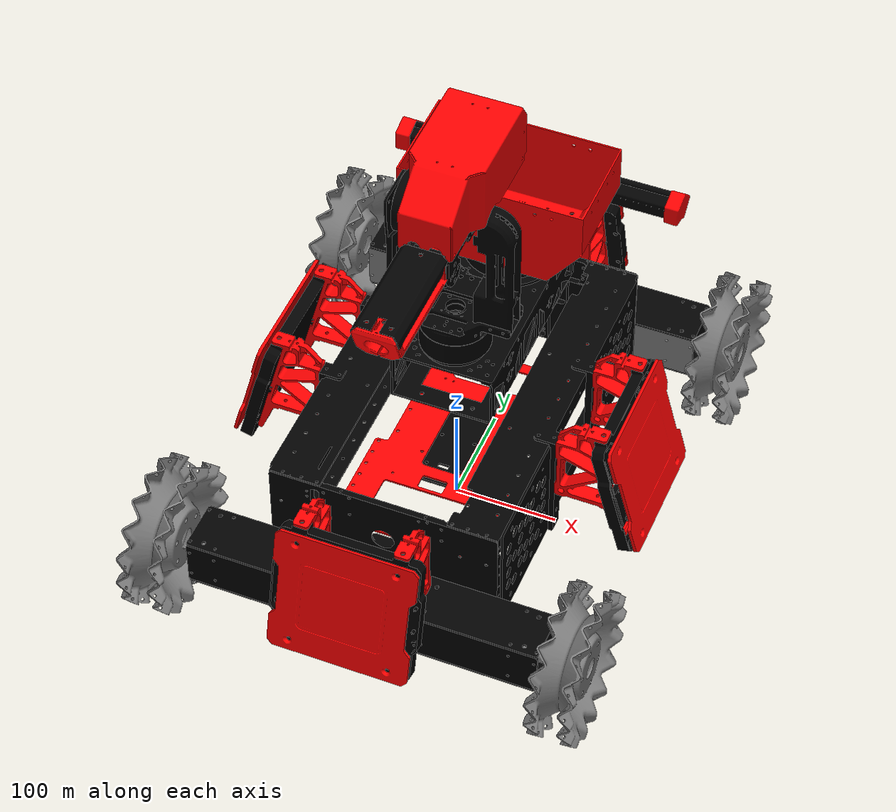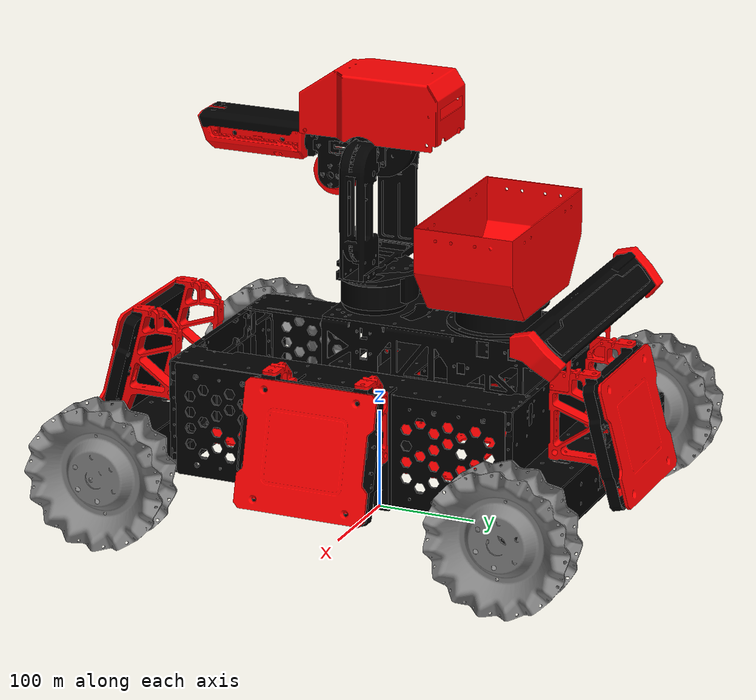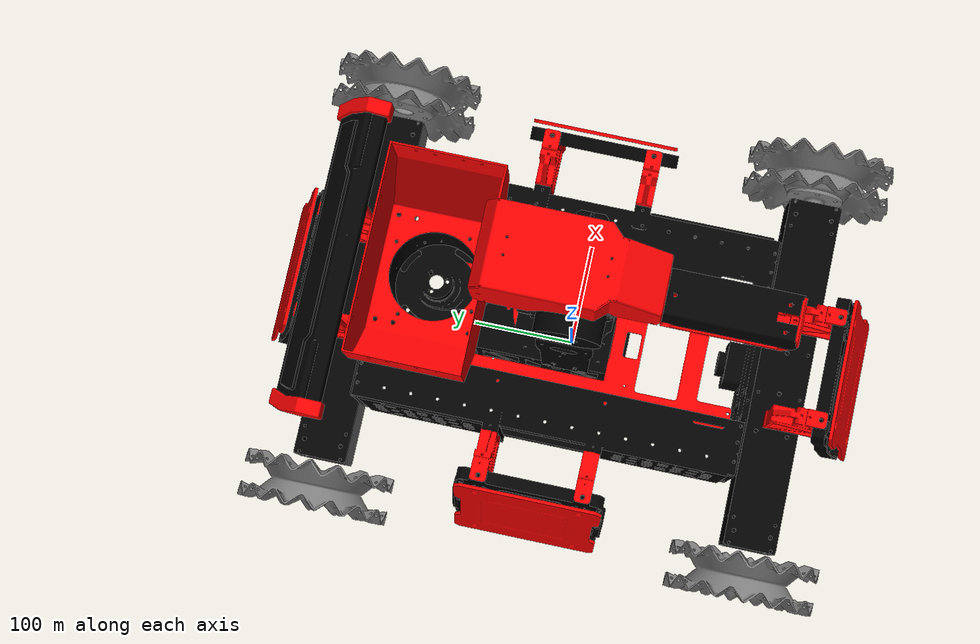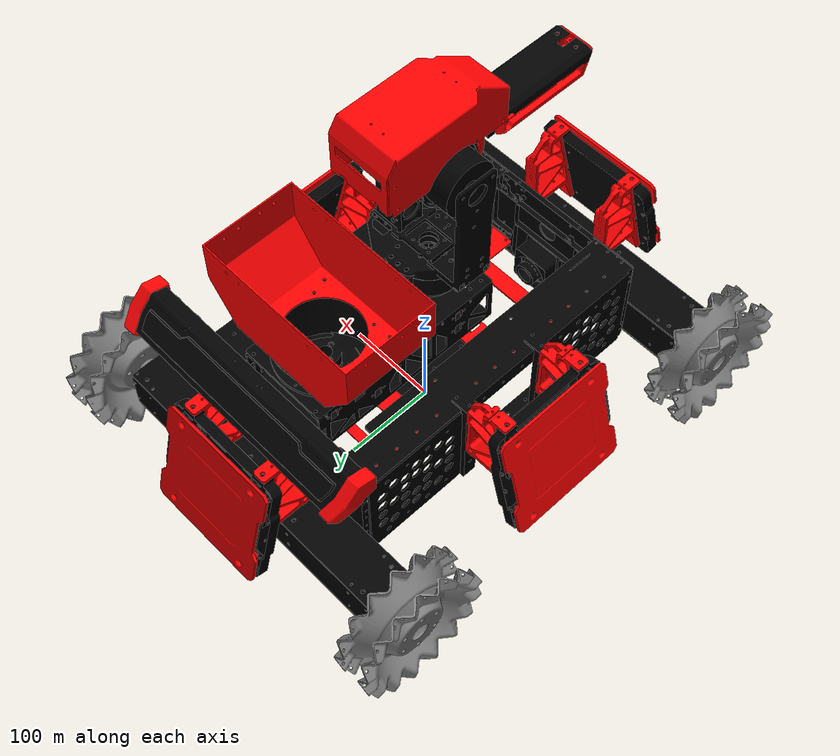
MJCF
<?xml version="1.0" encoding="utf-8"?>
<mujoco>
	<asset>
        <mesh name="shell0" file="rmashells/shell0.stl" scale="1 1 1"/>
        <mesh name="shell1" file="rmashells/shell1.stl" scale="1 1 1"/>
        <mesh name="shell2" file="rmashells/shell2.stl" scale="1 1 1"/>
        <mesh name="shell3" file="rmashells/shell3.stl" scale="1 1 1"/>
        <mesh name="shell4" file="rmashells/shell4.stl" scale="1 1 1"/>
        <mesh name="shell5" file="rmashells/shell5.stl" scale="1 1 1"/>
        <mesh name="shell6" file="rmashells/shell6.stl" scale="1 1 1"/>
        <mesh name="shell7" file="rmashells/shell7.stl" scale="1 1 1"/>
        <mesh name="shell8" file="rmashells/shell8.stl" scale="1 1 1"/>
        <mesh name="shell9" file="rmashells/shell9.stl" scale="1 1 1"/>
        <mesh name="shell10" file="rmashells/shell10.stl" scale="1 1 1"/>
        <mesh name="shell11" file="rmashells/shell11.stl" scale="1 1 1"/>
        <mesh name="shell12" file="rmashells/shell12.stl" scale="1 1 1"/>
        <mesh name="shell13" file="rmashells/shell13.stl" scale="1 1 1"/>
        <mesh name="shell14" file="rmashells/shell14.stl" scale="1 1 1"/>
        <mesh name="shell15" file="rmashells/shell15.stl" scale="1 1 1"/>
        <mesh name="shell16" file="rmashells/shell16.stl" scale="1 1 1"/>
        <mesh name="shell17" file="rmashells/shell17.stl" scale="1 1 1"/>
        <mesh name="shell18" file="rmashells/shell18.stl" scale="1 1 1"/>
        <mesh name="shell19" file="rmashells/shell19.stl" scale="1 1 1"/>
        <mesh name="shell20" file="rmashells/shell20.stl" scale="1 1 1"/>
        <mesh name="shell21" file="rmashells/shell21.stl" scale="1 1 1"/>
        <mesh name="shell22" file="rmashells/shell22.stl" scale="1 1 1"/>
        <mesh name="shell23" file="rmashells/shell23.stl" scale="1 1 1"/>
        <mesh name="shell24" file="rmashells/shell24.stl" scale="1 1 1"/>
        <mesh name="shell25" file="rmashells/shell25.stl" scale="1 1 1"/>
        <mesh name="shell26" file="rmashells/shell26.stl" scale="1 1 1"/>
        <mesh name="shell27" file="rmashells/shell27.stl" scale="1 1 1"/>
        <mesh name="shell28" file="rmashells/shell28.stl" scale="1 1 1"/>
        <mesh name="shell29" file="rmashells/shell29.stl" scale="1 1 1"/>
        <mesh name="shell30" file="rmashells/shell30.stl" scale="1 1 1"/>
        <mesh name="shell31" file="rmashells/shell31.stl" scale="1 1 1"/>
        <mesh name="shell32" file="rmashells/shell32.stl" scale="1 1 1"/>
        <mesh name="shell33" file="rmashells/shell33.stl" scale="1 1 1"/>
        <mesh name="shell34" file="rmashells/shell34.stl" scale="1 1 1"/>
        <mesh name="shell35" file="rmashells/shell35.stl" scale="1 1 1"/>
        <mesh name="shell36" file="rmashells/shell36.stl" scale="1 1 1"/>
        <mesh name="shell37" file="rmashells/shell37.stl" scale="1 1 1"/>
        <mesh name="shell38" file="rmashells/shell38.stl" scale="1 1 1"/>
        <mesh name="shell39" file="rmashells/shell39.stl" scale="1 1 1"/>
        <mesh name="shell40" file="rmashells/shell40.stl" scale="1 1 1"/>
        <mesh name="shell41" file="rmashells/shell41.stl" scale="1 1 1"/>
        <mesh name="shell42" file="rmashells/shell42.stl" scale="1 1 1"/>
        <mesh name="shell43" file="rmashells/shell43.stl" scale="1 1 1"/>
        <mesh name="shell44" file="rmashells/shell44.stl" scale="1 1 1"/>
        <mesh name="shell45" file="rmashells/shell45.stl" scale="1 1 1"/>
        <mesh name="shell46" file="rmashells/shell46.stl" scale="1 1 1"/>
        <mesh name="shell47" file="rmashells/shell47.stl" scale="1 1 1"/>
        <mesh name="shell48" file="rmashells/shell48.stl" scale="1 1 1"/>
        <mesh name="shell49" file="rmashells/shell49.stl" scale="1 1 1"/>
        <mesh name="shell50" file="rmashells/shell50.stl" scale="1 1 1"/>
        <mesh name="shell51" file="rmashells/shell51.stl" scale="1 1 1"/>
        <mesh name="shell52" file="rmashells/shell52.stl" scale="1 1 1"/>
        <mesh name="shell53" file="rmashells/shell53.stl" scale="1 1 1"/>
        <mesh name="shell54" file="rmashells/shell54.stl" scale="1 1 1"/>
        <mesh name="shell55" file="rmashells/shell55.stl" scale="1 1 1"/>
        <mesh name="shell56" file="rmashells/shell56.stl" scale="1 1 1"/>
	</asset>
    <size nconmax="500" njmax="1000"></size>
	<worldbody>
		<body name="robot" pos="0 0 230">
			<joint axis="1 0 0" name="x" pos="0 0 0" type="slide"></joint>
            <site pos="0 0 0" name="tx" rgba="0 0 0 0" size="1 1 1" euler="0 0 0" type="sphere"></site>
			<joint axis="0 1 0" name="y" pos="0 0 0" type="slide"></joint>
            <site pos="0 0 0" name="ty" rgba="0 0 0 0" size="1 1 1" euler="0 0 90" type="sphere"></site>
            <joint axis="0 0 1" damping="1000000000000" name="z" pos="0 0 0" type="slide"></joint>
            <joint axis="0 0 1" damping="1000000" name="rz" pos="0 0 0" type="hinge"></joint>

            <body name="mainframe" pos="-221 302 217" euler="270 0 0">
                <site pos="217 221 -302" name="agent" rgba="0 0 0 0" size="1 1 1" euler="-270 0 0" type="sphere"></site>
                <geom name="body1_r" mass="0.01" pos="0 0 0" mesh="shell0" type="mesh" rgba="0 0 0 1" euler="0 0 0"></geom>
                <geom name="body1_l" mass="0.01" pos="0 0 0" mesh="shell1" type="mesh" rgba="0 0 0 1" euler="0 0 0"></geom>
                <geom name="shell2" mass="0.01" pos="0 0 0" mesh="shell2" type="mesh" rgba="1 0 0 1" euler="0 0 0"></geom>
                <geom name="shell3" mass="0.01" pos="0 0 0" mesh="shell3" type="mesh" rgba="0 0 0 1" euler="0 0 0"></geom>
                <geom name="wheel_fl" condim="1" mass="0.01" pos="0 0 0" mesh="shell4" type="mesh" euler="0 0 0"></geom>
                <site name="wheel_fl_site" pos="417 355 -507" rgba="0.517 0.3203 0.0001 0.0" size="30 60 80" euler="0 0 0" type="box"></site>
                <geom name="wheel_fr" condim="1" mass="0.01" pos="0 0 0" mesh="shell5" type="mesh" euler="0 0 0"></geom>
                <site name="wheel_fr_site" pos="25 355 -507" rgba="0.517 0.3203 0.0001 0.0" size="30 60 80" euler="0 0 0" type="box"></site>
                <geom name="wheel_bl" condim="1" mass="0.01" pos="0 0 0" mesh="shell6" type="mesh" euler="0 0 0"></geom>
                <site name="wheel_bl_site" pos="417 355 -92.5" rgba="0.517 0.3203 0.0001 0.0" size="30 60 80" euler="0 0 0" type="box"></site>
                <geom name="wheel_br" condim="1" mass="0.01" pos="0 0 0" mesh="shell7" type="mesh" euler="0 0 0"></geom>
                <site name="wheel_br_site" pos="25 355 -92.5" rgba="0.517 0.3203 0.0001 0.0" size="30 60 80" euler="0 0 0" type="box"></site>
                <geom name="shell8" mass="0.01" pos="0 0 0" mesh="shell8" type="mesh" rgba="0 0 0 1" euler="0 0 0"></geom>
                <geom name="shell9" mass="0.01" pos="0 0 0" mesh="shell9" type="mesh" rgba="0 0 0 1" euler="0 0 0"></geom>
                <geom name="shell10" mass="0.01" pos="0 0 0" mesh="shell10" type="mesh" rgba="0 0 0 1" euler="0 0 0"></geom>
                <geom name="shell11" mass="0.01" pos="0 0 0" mesh="shell11" type="mesh" rgba="0 0 0 1" euler="0 0 0"></geom>
                <geom name="shell12" mass="0.01" pos="0 0 0" mesh="shell12" type="mesh" rgba="0 0 0 1" euler="0 0 0"></geom>
                <geom name="shell13" mass="0.01" pos="0 0 0" mesh="shell13" type="mesh" rgba="1 0 0 1" euler="0 0 0"></geom>
                <geom name="shell14" mass="0.01" pos="0 0 0" mesh="shell14" type="mesh" rgba="1 0 0 1" euler="0 0 0"></geom>
                <geom name="shell15" mass="0.01" pos="0 0 0" mesh="shell15" type="mesh" rgba="0 0 0 1" euler="0 0 0"></geom>
                <geom name="shell16" mass="0.01" pos="0 0 0" mesh="shell16" type="mesh" rgba="0 0 0 1" euler="0 0 0"></geom>
                <geom name="shell17" mass="0.01" pos="0 0 0" mesh="shell17" type="mesh" rgba="0 0 0 1" euler="0 0 0"></geom>
                <geom name="shell18" mass="0.01" pos="0 0 0" mesh="shell18" type="mesh" rgba="0 0 0 1" euler="0 0 0"></geom>
                <geom name="shell19" mass="0.01" pos="0 0 0" mesh="shell19" type="mesh" rgba="0 0 0 1" euler="0 0 0"></geom>
                <geom name="shell20" mass="0.01" pos="0 0 0" mesh="shell20" type="mesh" rgba="0 0 0 1" euler="0 0 0"></geom>
                <geom name="shell21" mass="0.01" pos="0 0 0" mesh="shell21" type="mesh" rgba="0 0 0 1" euler="0 0 0"></geom>
                <geom name="shell22" mass="0.01" pos="0 0 0" mesh="shell22" type="mesh" rgba="0 0 0 1" euler="0 0 0"></geom>
                <geom name="shell23" mass="0.01" pos="0 0 0" mesh="shell23" type="mesh" rgba="0 0 0 1" euler="0 0 0"></geom>
                <geom name="armor_r" mass="0.01" pos="0 0 0" mesh="shell24" type="mesh" rgba="1 0 0 1" euler="0 0 0"></geom>
                <site name="armor_r_site" pos="222 325 -560" rgba="0.017 0.7203 0.5001 0.0" size="75 67 25" euler="-16.5 0 0" type="box"></site>
                <geom name="armor_b" mass="0.01" pos="0 0 0" mesh="shell25" type="mesh" rgba="1 0 0 1" euler="0 0 0"></geom>
                <site name="armor_b_site" pos="222 325 -40" rgba="0.017 0.7203 0.5001 0.0" size="75 67 25" euler="16.5 0 0" type="box"></site>
                <geom name="armor_f" mass="0.01" pos="0 0 0" mesh="shell26" type="mesh" rgba="1 0 0 1" euler="0 0 0"></geom>
                <site name="armor_f_site" pos="45 325 -297" rgba="0.017 0.7203 0.5001 0.0" size="25 67 75" euler="0 0 16.5" type="box"></site>
                <geom name="armor_l" mass="0.01" pos="0 0 0" mesh="shell27" type="mesh" rgba="1 0 0 1" euler="0 0 0"></geom>
                <site name="armor_l_site" pos="395 325 -297" rgba="0.017 0.7203 0.5001 0.0" size="25 67 75" euler="0 0 -16.5" type="box"></site>
                <geom name="bar_f" mass="0.01" pos="0 0 0" mesh="shell28" type="mesh" rgba="0 0 0 1" euler="0 0 0"></geom>
                <site name="bar_f_site" pos="222 375.5 -507.5" rgba="0.017 0.1203 0.5001 0.0" size="170 35 35" euler="0 0 0" type="box"></site>
                <geom name="shell29" mass="0.01" pos="0 0 0" mesh="shell29" type="mesh" euler="0 0 0"></geom>
                <geom name="bar_b" mass="0.01" pos="0 0 0" mesh="shell30" type="mesh" rgba="0 0 0 1" euler="0 0 0"></geom>
                <site name="bar_b_site" pos="222 375.5 -95" rgba="0.017 0.1203 0.5001 0.0" size="170 35 35" euler="0 0 0" type="box"></site>
                <geom name="barrel" mass="0.01" pos="0 0 0" mesh="shell31" type="mesh" rgba="1 0 0 1" euler="0 0 0"></geom>
                <geom name="shell32" mass="0.01" pos="0 0 0" mesh="shell32" type="mesh" rgba="0 0 0 1" euler="0 0 0"></geom>
                <geom name="shell33" mass="0.01" pos="0 0 0" mesh="shell33" type="mesh" rgba="0 0 0 1" euler="0 0 0"></geom>
                <geom name="body2_r" mass="0.01" pos="0 0 0" mesh="shell34" type="mesh" rgba="0 0 0 1" euler="0 0 0"></geom>
                <geom name="body2_l" mass="0.01" pos="0 0 0" mesh="shell35" type="mesh" rgba="0 0 0 1" euler="0 0 0"></geom>
                <geom name="shell36" mass="0.01" pos="0 0 0" mesh="shell36" type="mesh" rgba="0 0 0 1" euler="0 0 0"></geom>
                <geom name="shell37" mass="0.01" pos="0 0 0" mesh="shell37" type="mesh" rgba="0 0 0 1" euler="0 0 0"></geom>
                <geom name="shell38" mass="0.01" pos="0 0 0" mesh="shell38" type="mesh" rgba="1 0 0 1" euler="0 0 0"></geom>
                <geom name="shell39" mass="0.01" pos="0 0 0" mesh="shell39" type="mesh" rgba="1 0 0 1" euler="0 0 0"></geom>
                <geom name="shell40" mass="0.01" pos="0 0 0" mesh="shell40" type="mesh" rgba="1 0 0 1" euler="0 0 0"></geom>
                <geom name="shell41" mass="0.01" pos="0 0 0" mesh="shell41" type="mesh" rgba="1 0 0 1" euler="0 0 0"></geom>
                <geom name="shell42" mass="0.01" pos="0 0 0" mesh="shell42" type="mesh" rgba="1 0 0 1" euler="0 0 0"></geom>
                <geom name="shell43" mass="0.01" pos="0 0 0" mesh="shell43" type="mesh" rgba="1 0 0 1" euler="0 0 0"></geom>
                <geom name="shell44" mass="0.01" pos="0 0 0" mesh="shell44" type="mesh" rgba="1 0 0 1" euler="0 0 0"></geom>
                <geom name="shell45" mass="0.01" pos="0 0 0" mesh="shell45" type="mesh" rgba="1 0 0 1" euler="0 0 0"></geom>
                <geom name="shell46" mass="0.01" pos="0 0 0" mesh="shell46" type="mesh" rgba="0 0 0 1" euler="0 0 0"></geom>
                <geom name="shell47" mass="0.01" pos="0 0 0" mesh="shell47" type="mesh" rgba="0 0 0 1" euler="0 0 0"></geom>
                <geom name="shell48" mass="0.01" pos="0 0 0" mesh="shell48" type="mesh" rgba="0 0 0 1" euler="0 0 0"></geom>
                <geom name="shell49" mass="0.01" pos="0 0 0" mesh="shell49" type="mesh" rgba="1 0 0 1" euler="0 0 0"></geom>
                <geom name="shell50" mass="0.01" pos="0 0 0" mesh="shell50" type="mesh" rgba="1 0 0 1" euler="0 0 0"></geom>
                <geom name="shell51" mass="0.01" pos="0 0 0" mesh="shell51" type="mesh" rgba="1 0 0 1" euler="0 0 0"></geom>
                <geom name="shell52" mass="0.01" pos="0 0 0" mesh="shell52" type="mesh" rgba="1 0 0 1" euler="0 0 0"></geom>
                <geom name="shell53" mass="0.01" pos="0 0 0" mesh="shell53" type="mesh" rgba="1 0 0 1" euler="0 0 0"></geom>
                <geom name="shell54" mass="0.01" pos="0 0 0" mesh="shell54" type="mesh" rgba="0 0 0 1" euler="0 0 0"></geom>
                <geom name="shell55" mass="0.01" pos="0 0 0" mesh="shell55" type="mesh" rgba="0 0 0 1" euler="0 0 0"></geom>
                <geom name="shell56" mass="0.01" pos="0 0 0" mesh="shell56" type="mesh" rgba="0 0 0 1" euler="0 0 0"></geom>
                <site name="body_site" pos="221 341 -297" rgba="0.417 0.7203 0.0001 0.0" size="120 60 180" euler="0 0 0" type="box"></site>
                <site name="barrel_sight" pos="221 79 -307" rgba="0.017 0.1203 0.5001 0.0" size="5 5 5" euler="0 0 0" type="sphere"></site>
                <site pos="217 221 -302" name="no_enter_zone" rgba="0.417 0.7203 0.0001 0.0" size="250 325 200" euler="-270 0 0" type="box"></site>
            </body>
		</body>
        <body name="annotation:outer_bound" pos="0 0 260">
			<geom conaffinity="0" contype="0" mass="0" pos="0 0 0" rgba="0.417 0.7203 0.0001 0.0" size="350 350 350" type="box"></geom>
		</body>
	</worldbody>
    <actuator>
        <velocity name="motortx" kv="100" ctrllimited="true" ctrlrange="-2000 2000" forcelimited="true" forcerange="-1000000000 1000000000" site="tx"></velocity>
		<velocity name="motorty" kv="100" ctrllimited="true" ctrlrange="-3000 3000" forcelimited="true" forcerange="-1000000000 1000000000" site="ty"></velocity>
		<velocity name="motorrz" kv="100" ctrllimited="true" ctrlrange="-47123.9 47123.9" forcelimited="true" forcerange="-100000000 100000000" joint="rz"></velocity>
	</actuator>
    <sensor>
        <touch name="wheel_fl_touch" site="wheel_fl_site"></touch>
        <touch name="wheel_fr_touch" site="wheel_fr_site"></touch>
        <touch name="wheel_bl_touch" site="wheel_bl_site"></touch>
        <touch name="wheel_br_touch" site="wheel_br_site"></touch>
        <touch name="armor_r_touch" site="armor_r_site"></touch>
        <touch name="armor_b_touch" site="armor_b_site"></touch>
        <touch name="armor_f_touch" site="armor_f_site"></touch>
        <touch name="armor_l_touch" site="armor_l_site"></touch>
        <touch name="bar_f_touch" site="bar_f_site"></touch>
        <touch name="bar_b_touch" site="bar_b_site"></touch>
        <touch name="body_touch" site="body_site"></touch>
        <touch name="no_enter_zone_touch" site="no_enter_zone"></touch>
        <velocimeter name="velocimeter" site="agent"></velocimeter>
    </sensor>
</mujoco>
